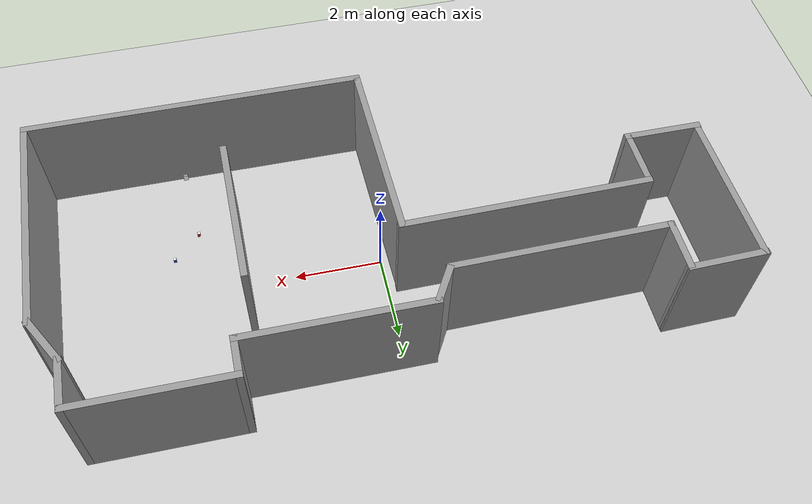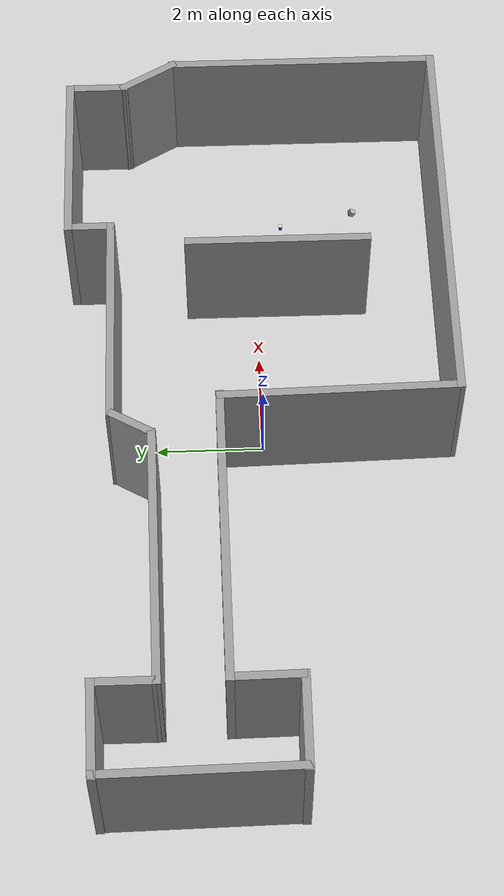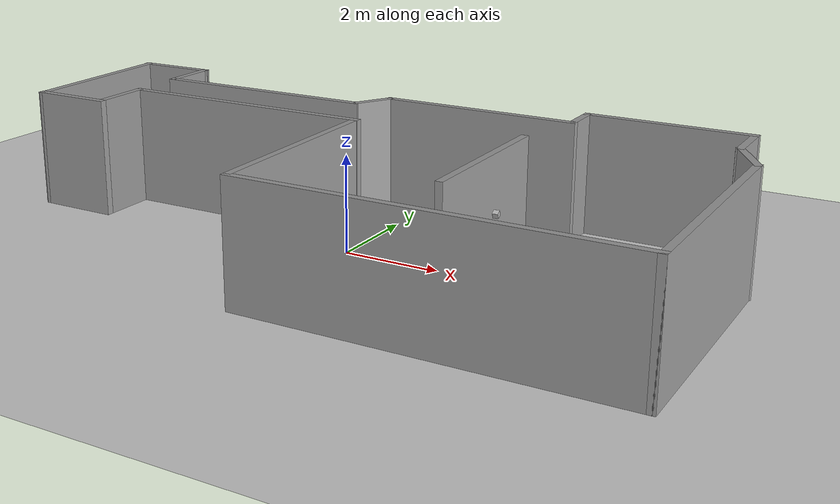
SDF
<sdf version="1.9">
 <world name="default">
  <plugin filename="gz-sim-physics-system" name="gz::sim::systems::Physics">
   <engine><filename>libgz-physics-bullet-featherstone-plugin.so</filename></engine>
  </plugin>
  <plugin filename="gz-sim-user-commands-system" name="gz::sim::systems::UserCommands"/>
  <plugin filename="gz-sim-scene-broadcaster-system" name="gz::sim::systems::SceneBroadcaster"/>
  <plugin filename="gz-sim-sensors-system" name="gz::sim::systems::Sensors">
   <render_engine>ogre2</render_engine>
  </plugin>
  <plugin filename="gz-sim-imu-system" name="gz::sim::systems::Imu"/>
  <gravity>0.0 0.0 -9.8</gravity>
  <include><uri>https://fuel.gazebosim.org/1.0/OpenRobotics/models/Sun</uri></include>
  <model name="ground_plane">
   <static>true</static>
   <link name="link">
    <collision name="collision">
     <geometry><plane><normal>0 0 1</normal></plane></geometry>
     <surface><friction><torsional><coefficient>0.0</coefficient></torsional></friction></surface>
    </collision>
    <visual name="visual">
     <geometry><plane><normal>0 0 1</normal><size>100 100</size></plane></geometry>
     <material>
      <ambient>0.8 0.8 0.8 1</ambient>
      <diffuse>0.8 0.8 0.8 1</diffuse>
      <specular>0.8 0.8 0.8 1</specular>
     </material>
    </visual>
   </link>
  </model>
  <scene><shadows>false</shadows></scene>
  <model name="Wall_1">
   <static>1</static>
   <link name="link">
    <collision name="collision">
     <geometry><box><size>1.2 0.15 2.5</size></box></geometry>
     <pose>0 0 1.25 0 0 0</pose>
    </collision>
    <visual name="visual">
     <geometry><box><size>1.2 0.15 2.5</size></box></geometry>
     <pose>0 0 1.25 0 0 0</pose>
     <material>
      <script><uri>file://media/materials/scripts/gazebo.material</uri><name>Gazebo/Grey</name></script>
      <ambient>1 1 1 1</ambient>
     </material>
    </visual>
   </link>
   <pose>-5.79107 2.49368 0 0 0 1.5708</pose>
  </model>
  <model name="Wall_2">
   <static>1</static>
   <link name="link">
    <collision name="collision">
     <geometry><box><size>1.79256 0.15 2.5</size></box></geometry>
     <pose>0 0 1.25 0 0 0</pose>
    </collision>
    <visual name="visual">
     <geometry><box><size>1.79256 0.15 2.5</size></box></geometry>
     <pose>0 0 1.25 0 0 0</pose>
     <material>
      <script><uri>file://media/materials/scripts/gazebo.material</uri><name>Gazebo/Grey</name></script>
      <ambient>1 1 1 1</ambient>
     </material>
    </visual>
   </link>
   <pose>-6.61216 3.04631 0 0 0 -3.1203</pose>
  </model>
  <model name="Wall_3">
   <static>1</static>
   <link name="link">
    <collision name="collision">
     <geometry><box><size>3.68565 0.15 2.5</size></box></geometry>
     <pose>0 0 1.25 0 0 0</pose>
    </collision>
    <visual name="visual">
     <geometry><box><size>3.68565 0.15 2.5</size></box></geometry>
     <pose>0 0 1.25 0 0 0</pose>
     <material>
      <script><uri>file://media/materials/scripts/gazebo.material</uri><name>Gazebo/Grey</name></script>
      <ambient>1 1 1 1</ambient>
     </material>
    </visual>
   </link>
   <pose>-7.38434 1.26123 0 0 0 -1.5545</pose>
  </model>
  <model name="Wall_4">
   <static>1</static>
   <link name="link">
    <collision name="collision">
     <geometry><box><size>1.77744 0.15 2.5</size></box></geometry>
     <pose>0 0 1.25 0 0 0</pose>
    </collision>
    <visual name="visual">
     <geometry><box><size>1.77744 0.15 2.5</size></box></geometry>
     <pose>0 0 1.25 0 0 0</pose>
     <material>
      <script><uri>file://media/materials/scripts/gazebo.material</uri><name>Gazebo/Grey</name></script>
      <ambient>1 1 1 1</ambient>
     </material>
    </visual>
   </link>
   <pose>-6.56193 -0.508986 0 0 0 -0.003224</pose>
  </model>
  <model name="Wall_5">
   <static>1</static>
   <link name="link">
    <collision name="collision">
     <geometry><box><size>1.35672 0.15 2.5</size></box></geometry>
     <pose>0 0 1.25 0 0 0</pose>
    </collision>
    <visual name="visual">
     <geometry><box><size>1.35672 0.15 2.5</size></box></geometry>
     <pose>0 0 1.25 0 0 0</pose>
     <material>
      <script><uri>file://media/materials/scripts/gazebo.material</uri><name>Gazebo/Grey</name></script>
      <ambient>1 1 1 1</ambient>
     </material>
    </visual>
   </link>
   <pose>-5.75827 0.136795 0 0 0 1.5846</pose>
  </model>
  <model name="Wall_6">
   <static>1</static>
   <link name="link">
    <collision name="collision">
     <geometry><box><size>5.64664 0.15 2.5</size></box></geometry>
     <pose>0 0 1.25 0 0 0</pose>
    </collision>
    <visual name="visual">
     <geometry><box><size>5.64664 0.15 2.5</size></box></geometry>
     <pose>0 0 1.25 0 0 0</pose>
     <material>
      <script><uri>file://media/materials/scripts/gazebo.material</uri><name>Gazebo/Grey</name></script>
      <ambient>1 1 1 1</ambient>
     </material>
    </visual>
   </link>
   <pose>-3.02009 0.766397 0 0 0 0.007796</pose>
  </model>
  <model name="Wall_7">
   <static>1</static>
   <link name="link">
    <collision name="collision">
     <geometry><box><size>4.38998 0.15 2.5</size></box></geometry>
     <pose>0 0 1.25 0 0 0</pose>
    </collision>
    <visual name="visual">
     <geometry><box><size>4.38998 0.15 2.5</size></box></geometry>
     <pose>0 0 1.25 0 0 0</pose>
     <material>
      <script><uri>file://media/materials/scripts/gazebo.material</uri><name>Gazebo/Grey</name></script>
      <ambient>1 1 1 1</ambient>
     </material>
    </visual>
   </link>
   <pose>-0.242291 -1.34162 0 0 0 -1.54891</pose>
  </model>
  <model name="Wall_8">
   <static>1</static>
   <link name="link">
    <collision name="collision">
     <geometry><box><size>7.75 0.15 2.5</size></box></geometry>
     <pose>0 0 1.25 0 0 0</pose>
    </collision>
    <visual name="visual">
     <geometry><box><size>7.75 0.15 2.5</size></box></geometry>
     <pose>0 0 1.25 0 0 0</pose>
     <material>
      <script><uri>file://media/materials/scripts/gazebo.material</uri><name>Gazebo/Grey</name></script>
      <ambient>1 1 1 1</ambient>
     </material>
    </visual>
   </link>
   <pose>3.60739 -3.55107 0 0 0 0</pose>
  </model>
  <model name="Wall_9">
   <static>1</static>
   <link name="link">
    <collision name="collision">
     <geometry><box><size>5.25 0.15 2.5</size></box></geometry>
     <pose>0 0 1.25 0 0 0</pose>
    </collision>
    <visual name="visual">
     <geometry><box><size>5.25 0.15 2.5</size></box></geometry>
     <pose>0 0 1.25 0 0 0</pose>
     <material>
      <script><uri>file://media/materials/scripts/gazebo.material</uri><name>Gazebo/Grey</name></script>
      <ambient>1 1 1 1</ambient>
     </material>
    </visual>
   </link>
   <pose>7.40739 -1.00107 0 0 0 1.5708</pose>
  </model>
  <model name="Wall_10">
   <static>1</static>
   <link name="link">
    <collision name="collision">
     <geometry><box><size>1.25 0.15 2.5</size></box></geometry>
     <pose>0 0 1.25 0 0 0</pose>
    </collision>
    <visual name="visual">
     <geometry><box><size>1.25 0.15 2.5</size></box></geometry>
     <pose>0 0 1.25 0 0 0</pose>
     <material>
      <script><uri>file://media/materials/scripts/gazebo.material</uri><name>Gazebo/Grey</name></script>
      <ambient>1 1 1 1</ambient>
     </material>
    </visual>
   </link>
   <pose>7.13239 2.02524 0 0 0 2.0944</pose>
  </model>
  <model name="Wall_11">
   <static>1</static>
   <link name="link">
    <collision name="collision">
     <geometry><box><size>1.20114 0.15 2.5</size></box></geometry>
     <pose>0 0 1.25 0 0 0</pose>
    </collision>
    <visual name="visual">
     <geometry><box><size>1.20114 0.15 2.5</size></box></geometry>
     <pose>0 0 1.25 0 0 0</pose>
     <material>
      <script><uri>file://media/materials/scripts/gazebo.material</uri><name>Gazebo/Grey</name></script>
      <ambient>1 1 1 1</ambient>
     </material>
    </visual>
   </link>
   <pose>6.85739 3.02713 0 0 0 1.5708</pose>
  </model>
  <model name="Wall_12">
   <static>1</static>
   <link name="link">
    <collision name="collision">
     <geometry><box><size>3.5 0.15 2.5</size></box></geometry>
     <pose>0 0 1.25 0 0 0</pose>
    </collision>
    <visual name="visual">
     <geometry><box><size>3.5 0.15 2.5</size></box></geometry>
     <pose>0 0 1.25 0 0 0</pose>
     <material>
      <script><uri>file://media/materials/scripts/gazebo.material</uri><name>Gazebo/Grey</name></script>
      <ambient>1 1 1 1</ambient>
     </material>
    </visual>
   </link>
   <pose>5.18239 3.55269 0 0 0 3.14159</pose>
  </model>
  <model name="Wall_13">
   <static>1</static>
   <link name="link">
    <collision name="collision">
     <geometry><box><size>0.951136 0.15 2.5</size></box></geometry>
     <pose>0 0 1.25 0 0 0</pose>
    </collision>
    <visual name="visual">
     <geometry><box><size>0.951136 0.15 2.5</size></box></geometry>
     <pose>0 0 1.25 0 0 0</pose>
     <material>
      <script><uri>file://media/materials/scripts/gazebo.material</uri><name>Gazebo/Grey</name></script>
      <ambient>1 1 1 1</ambient>
     </material>
    </visual>
   </link>
   <pose>3.50739 3.15213 0 0 0 -1.5708</pose>
  </model>
  <model name="Wall_14">
   <static>1</static>
   <link name="link">
    <collision name="collision">
     <geometry><box><size>4.25 0.15 2.5</size></box></geometry>
     <pose>0 0 1.25 0 0 0</pose>
    </collision>
    <visual name="visual">
     <geometry><box><size>4.25 0.15 2.5</size></box></geometry>
     <pose>0 0 1.25 0 0 0</pose>
     <material>
      <script><uri>file://media/materials/scripts/gazebo.material</uri><name>Gazebo/Grey</name></script>
      <ambient>1 1 1 1</ambient>
     </material>
    </visual>
   </link>
   <pose>1.45739 2.75156 0 0 0 3.14159</pose>
  </model>
  <model name="Wall_15">
   <static>1</static>
   <link name="link">
    <collision name="collision">
     <geometry><box><size>0.9 0.15 2.5</size></box></geometry>
     <pose>0 0 1.25 0 0 0</pose>
    </collision>
    <visual name="visual">
     <geometry><box><size>0.9 0.15 2.5</size></box></geometry>
     <pose>0 0 1.25 0 0 0</pose>
     <material>
      <script><uri>file://media/materials/scripts/gazebo.material</uri><name>Gazebo/Grey</name></script>
      <ambient>1 1 1 1</ambient>
     </material>
    </visual>
   </link>
   <pose>-0.805112 2.3835 0 0 0 -2.0944</pose>
  </model>
  <model name="Wall_16">
   <static>1</static>
   <link name="link">
    <collision name="collision">
     <geometry><box><size>4.92373 0.15 2.5</size></box></geometry>
     <pose>0 0 1.25 0 0 0</pose>
    </collision>
    <visual name="visual">
     <geometry><box><size>4.92373 0.15 2.5</size></box></geometry>
     <pose>0 0 1.25 0 0 0</pose>
     <material>
      <script><uri>file://media/materials/scripts/gazebo.material</uri><name>Gazebo/Grey</name></script>
      <ambient>1 1 1 1</ambient>
     </material>
    </visual>
   </link>
   <pose>-3.40434 1.98962 0 0 0 -3.13077</pose>
  </model>
  <model name="Wall_17">
   <static>1</static>
   <link name="link">
    <collision name="collision">
     <geometry><box><size>3.5 0.15 2.5</size></box></geometry>
     <pose>0 0 1.25 0 0 0</pose>
    </collision>
    <visual name="visual">
     <geometry><box><size>3.5 0.15 2.5</size></box></geometry>
     <pose>0 0 1.25 0 0 0</pose>
     <material>
      <script><uri>file://media/materials/scripts/gazebo.material</uri><name>Gazebo/Grey</name></script>
      <ambient>1 1 1 1</ambient>
     </material>
    </visual>
   </link>
   <pose>3.10875 -0.378342 0 0 0 -1.5708</pose>
  </model>
  <model name="external_camera">
   <static>true</static>
   <link name="link">
    <pose>4.03 -1.83 2.00 0 1.1 1.65</pose>
    <inertial>
     <mass>0.1</mass>
     <inertia><ixx>0.000166667</ixx><iyy>0.000166667</iyy><izz>0.000166667</izz></inertia>
    </inertial>
    <collision name="collision"><geometry><box><size>0.1 0.1 0.1</size></box></geometry></collision>
    <visual name="visual"><geometry><box><size>0.1 0.1 0.1</size></box></geometry></visual>
    <sensor name="depth_camera" type="depth">
     <camera>
      <horizontal_fov>1.047</horizontal_fov>
      <image><width>1280</width><height>720</height></image>
      <clip><near>0.1</near><far>100</far></clip>
     </camera>
     <always_on>1</always_on>
     <update_rate>30</update_rate>
     <visualize>true</visualize>
    </sensor>
    <sensor name="rgb_camera" type="camera">
     <camera><horizontal_fov>1.047</horizontal_fov><image><width>1280</width><height>720</height></image></camera>
     <always_on>1</always_on>
     <update_rate>30</update_rate>
     <visualize>true</visualize>
    </sensor>
   </link>
  </model>
  <model name="blue_cube_on_table2">
   <pose>4.6 -0.5 0.81 0 0 0</pose>
   <link name="blue_cube_link">
    <inertial><mass>2</mass></inertial>
    <collision name="collision"><geometry><box><size>0.06 0.06 0.1</size></box></geometry></collision>
    <visual name="visual">
     <geometry><box><size>0.06 0.06 0.1</size></box></geometry>
     <material>
      <script><name>Gazebo/Blue</name><uri>file://media/materials/scripts/gazebo.material</uri></script>
     </material>
    </visual>
   </link>
   <link name="tag10">
    <pose>0 0 0.051 0 0 0</pose>
    <collision name="tag_collision"><geometry><box><size>0.06 0.065 0.001</size></box></geometry></collision>
    <visual name="tag_visual">
     <geometry><box><size>0.065 0.065 0.001</size></box></geometry>
     <material>
      <ambient>1 1 1 1</ambient>
      <diffuse>1 1 1 1</diffuse>
      <pbr>
       <metal><albedo_map>model://ir_base/models/artag/materials/textures/tag36_11_00010.png</albedo_map></metal>
      </pbr>
     </material>
    </visual>
   </link>
   <joint name="blue_cube_tag10" type="fixed"><parent>blue_cube_link</parent><child>tag10</child></joint>
  </model>
  <model name="red_cube_on_table">
   <pose>4 -1.1 0.81 0 0 0</pose>
   <link name="red_cube_link">
    <inertial><mass>2</mass></inertial>
    <collision name="collision"><geometry><box><size>0.06 0.06 0.1</size></box></geometry></collision>
    <visual name="visual">
     <geometry><box><size>0.06 0.06 0.1</size></box></geometry>
     <material>
      <script><name>Gazebo/Red</name><uri>file://media/materials/scripts/gazebo.material</uri></script>
     </material>
    </visual>
   </link>
   <link name="tag01">
    <pose>0 0 0.051 0 0 0</pose>
    <collision name="tag_collision"><geometry><box><size>0.06 0.06 0.001</size></box></geometry></collision>
    <visual name="tag_visual">
     <geometry><box><size>0.065 0.065 0.001</size></box></geometry>
     <material>
      <ambient>1 1 1 1</ambient>
      <diffuse>1 1 1 1</diffuse>
      <pbr>
       <metal><albedo_map>model://ir_base/models/artag/materials/textures/tag36_11_00001.png</albedo_map></metal>
      </pbr>
     </material>
    </visual>
   </link>
   <joint name="red_cube_tag01" type="fixed"><parent>red_cube_link</parent><child>tag01</child></joint>
  </model>
 </world>
</sdf>
